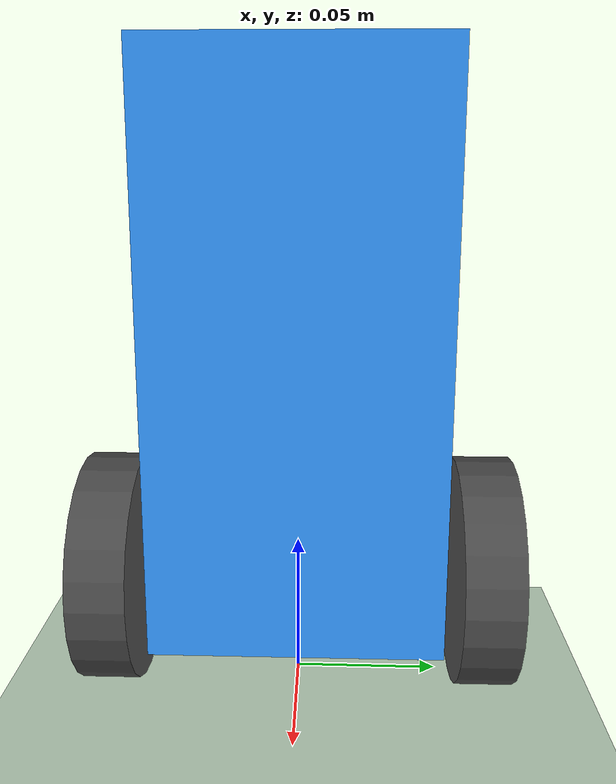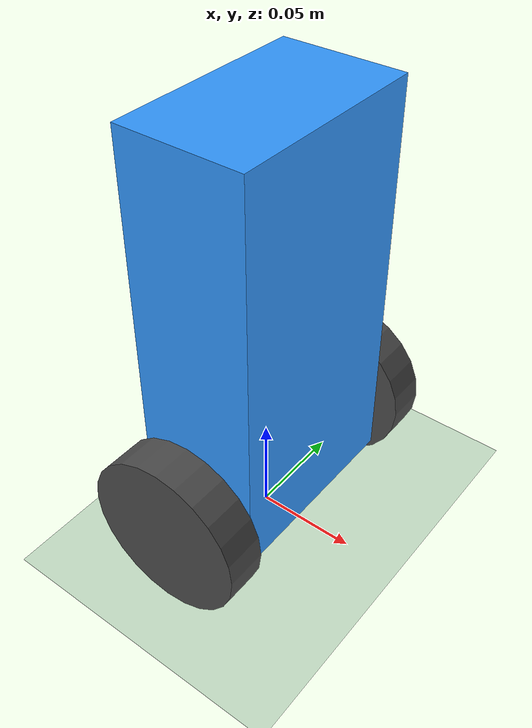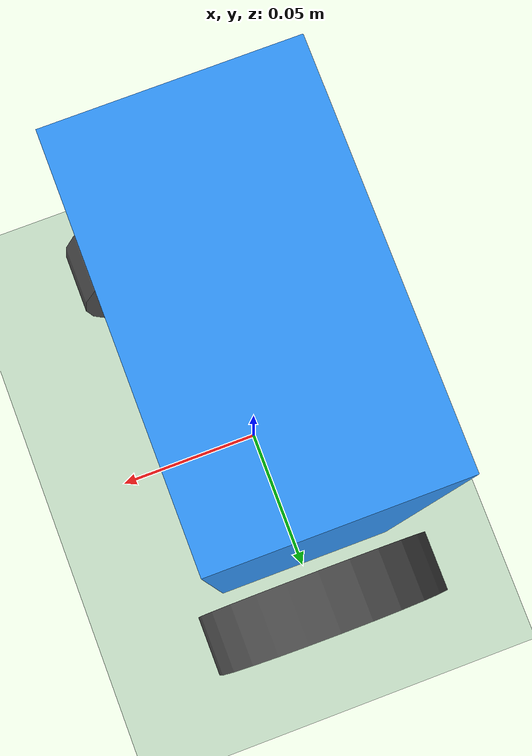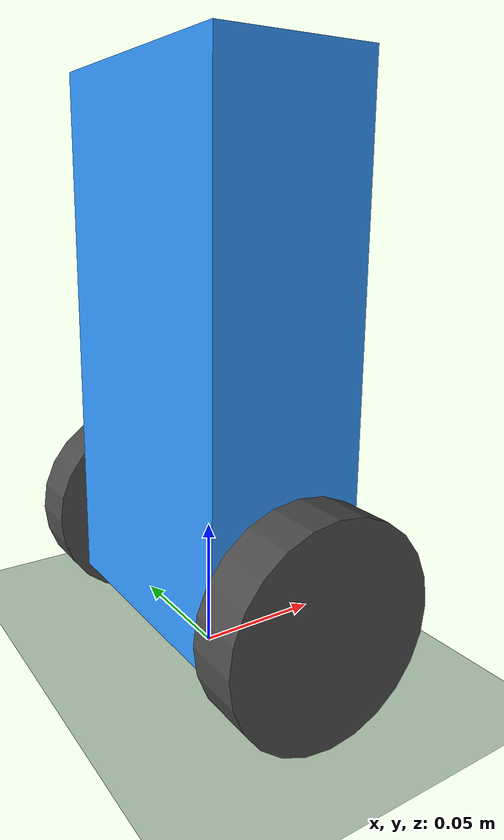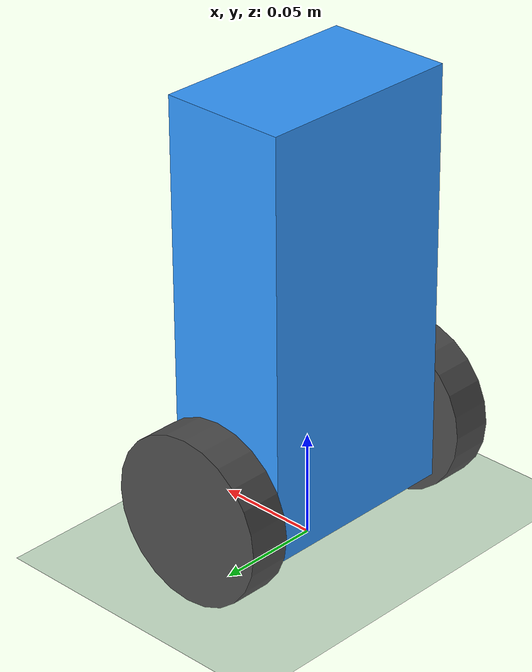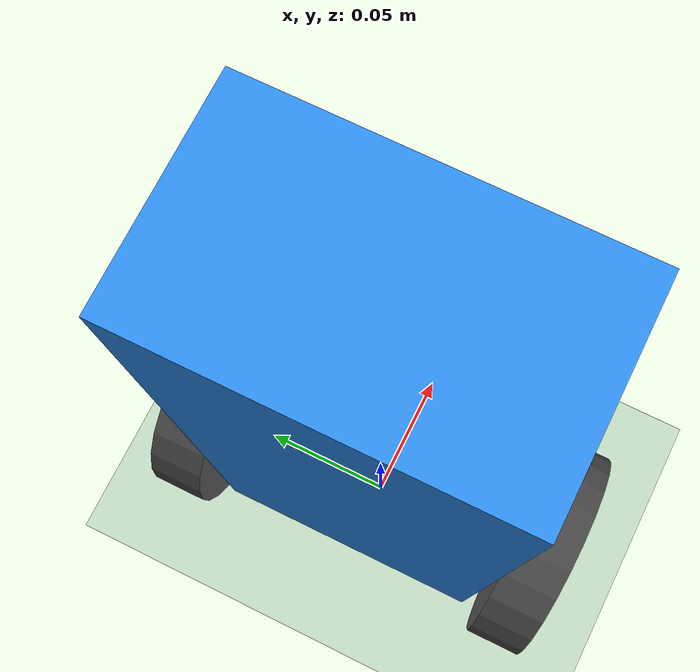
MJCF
<?xml version="1.0" encoding="utf-8"?>
<mujoco model="wheeled_robot">

  <option timestep="1e-3" integrator="RK4" density="1.2" gravity="0 0 -9.81"/>

  <worldbody>

    <!-- Мир -->
    <light name="top" pos="0 0 3" dir="0 0 -1" directional="true"/>
    <geom name="floor" type="plane" size="10 10 0.1"
          rgba="0.8 0.9 0.8 1" friction="1.0 0.005 0.0001"/>

    <!-- Основное тело робота -->
    <body name="base" pos="0 0 0.12">
      <freejoint name="base_joint"/>

      <!-- Геометрия корпуса -->
      <geom name="base_geom" type="box" size="0.03 0.05 0.10" mass="0.8"
            rgba="0.2 0.6 1 1"/>

      <!-- IMU (гироскоп + акселерометр) -->
      <site name="imu" pos="0 0 0" size="0.005"/>

      <!-- Левое колесо -->
      <body name="left_wheel" pos="0 0.065 -0.08">
        <joint name="left_wheel_hinge" type="hinge" axis="0 1 0"/>
        <geom name="left_wheel_geom" type="cylinder" size="0.04 0.01"
              euler="90 0 0" mass="0.3" rgba="0.3 0.3 0.3 1"/>
      </body>

      <!-- Правое колесо -->
      <body name="right_wheel" pos="0 -0.065 -0.08">
        <joint name="right_wheel_hinge" type="hinge" axis="0 1 0"/>
        <geom name="right_wheel_geom" type="cylinder" size="0.04 0.01"
              euler="90 0 0" mass="0.3" rgba="0.3 0.3 0.3 1"/>
      </body>

    </body>

  </worldbody>

  <actuator>
    <!--  Мотор левого колеса -->
    <motor name="left_motor"
           joint="left_wheel_hinge"
           ctrllimited="true"
           ctrlrange="-10 10"/>
    <!-- Мотор правого колеса -->
    <motor name="right_motor"
           joint="right_wheel_hinge"
           ctrllimited="true"
           ctrlrange="-10 10"/>
  </actuator>

  <sensor>
    <!-- Сенсор угловой скорости корпуса (гироскоп) -->
    <gyro name="gyro" site="imu"/>
    <!-- Акселерометр корпуса (ускорения по XYZ) -->
    <accelerometer name="acc" site="imu"/>
  </sensor>

</mujoco>
